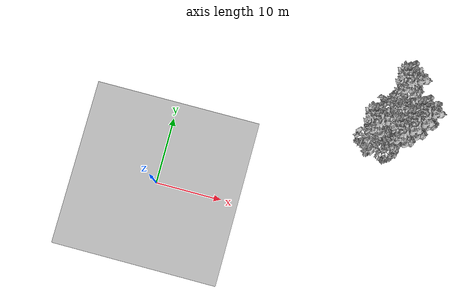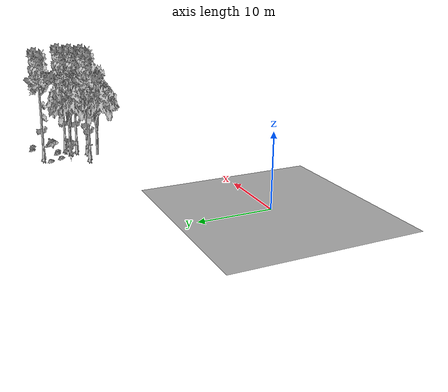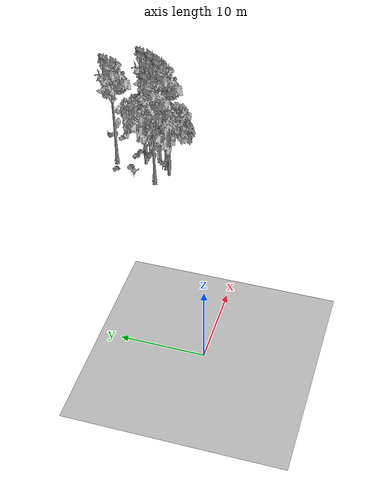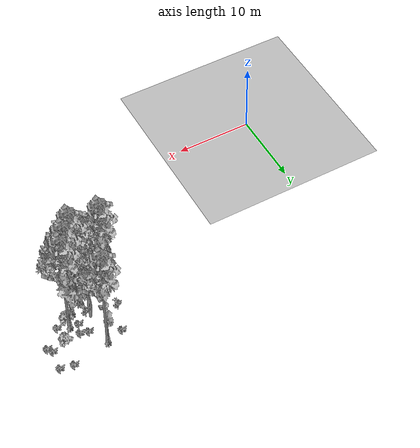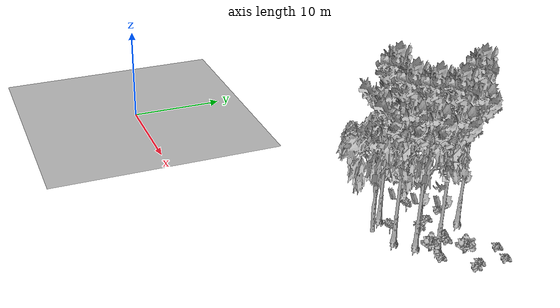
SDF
<sdf version="1.7">
 <world name="default">
  <model name="ground_plane">
   <static>1</static>
   <link name="link">
    <collision name="collision">
     <pose>-50 0 0 0 -0 0</pose>
     <geometry><plane><normal>0 0 1</normal><size>80 80</size></plane></geometry>
     <surface><contact><ode><min_depth>0.01</min_depth><max_vel>0</max_vel></ode></contact></surface>
    </collision>
    <visual name="grass">
     <cast_shadows>0</cast_shadows>
     <geometry>
      <mesh>
       <scale>0.46714285714285714 0.46714285714285714 0.1</scale>
       <uri>file://grass_plane/meshes/grass_plane.dae</uri>
      </mesh>
     </geometry>
    </visual>
   </link>
  </model>
  <model name="Tree 46">
   <static>1</static>
   <pose>31.62524879990042 21.984881812103055 0 1.57079 -0 0</pose>
   <link name="link">
    <collision name="collision">
     <geometry><mesh><scale>3.5 5 3.5</scale><uri>model://tree_9/meshes/tree_9.obj</uri></mesh></geometry>
    </collision>
    <visual name="visual">
     <geometry><mesh><scale>3.5 5 3.5</scale><uri>model://tree_9/meshes/tree_9.obj</uri></mesh></geometry>
    </visual>
   </link>
  </model>
  <model name="Tree 142">
   <static>1</static>
   <pose>34.62983490762261 17.927774769257653 0 1.57079 -0 0</pose>
   <link name="link">
    <collision name="collision">
     <geometry><mesh><scale>3.5 5 3.5</scale><uri>model://tree_9/meshes/tree_9.obj</uri></mesh></geometry>
    </collision>
    <visual name="visual">
     <geometry><mesh><scale>3.5 5 3.5</scale><uri>model://tree_9/meshes/tree_9.obj</uri></mesh></geometry>
    </visual>
   </link>
  </model>
  <model name="Tree 224">
   <static>1</static>
   <pose>33.58056173305613 16.302713274284592 0 1.57079 -0 0</pose>
   <link name="link">
    <collision name="collision">
     <geometry><mesh><scale>3.5 5 3.5</scale><uri>model://tree_9/meshes/tree_9.obj</uri></mesh></geometry>
    </collision>
    <visual name="visual">
     <geometry><mesh><scale>3.5 5 3.5</scale><uri>model://tree_9/meshes/tree_9.obj</uri></mesh></geometry>
    </visual>
   </link>
  </model>
  <model name="Tree 442">
   <static>1</static>
   <pose>30.165659111508162 13.806626503902763 0 1.57079 -0 0</pose>
   <link name="link">
    <collision name="collision">
     <geometry><mesh><scale>3.5 5 3.5</scale><uri>model://tree_2/meshes/tree_2.obj</uri></mesh></geometry>
    </collision>
    <visual name="visual">
     <geometry><mesh><scale>3.5 5 3.5</scale><uri>model://tree_2/meshes/tree_2.obj</uri></mesh></geometry>
    </visual>
   </link>
  </model>
  <model name="Tree 509">
   <static>1</static>
   <pose>28.69350611103812 15.415371504336434 0 1.57079 -0 0</pose>
   <link name="link">
    <collision name="collision">
     <geometry><mesh><scale>3.5 5 3.5</scale><uri>model://tree_9/meshes/tree_9.obj</uri></mesh></geometry>
    </collision>
    <visual name="visual">
     <geometry><mesh><scale>3.5 5 3.5</scale><uri>model://tree_9/meshes/tree_9.obj</uri></mesh></geometry>
    </visual>
   </link>
  </model>
  <model name="Tree 540">
   <static>1</static>
   <pose>31.71832301681937 17.714761710978152 0 1.57079 -0 0</pose>
   <link name="link">
    <collision name="collision">
     <geometry><mesh><scale>3.5 5 3.5</scale><uri>model://tree_2/meshes/tree_2.obj</uri></mesh></geometry>
    </collision>
    <visual name="visual">
     <geometry><mesh><scale>3.5 5 3.5</scale><uri>model://tree_2/meshes/tree_2.obj</uri></mesh></geometry>
    </visual>
   </link>
  </model>
  <model name="Tree 576">
   <static>1</static>
   <pose>32.23447571567333 14.89614206844297 0 1.57079 -0 0</pose>
   <link name="link">
    <collision name="collision">
     <geometry><mesh><scale>3.5 5 3.5</scale><uri>model://tree_9/meshes/tree_9.obj</uri></mesh></geometry>
    </collision>
    <visual name="visual">
     <geometry><mesh><scale>3.5 5 3.5</scale><uri>model://tree_9/meshes/tree_9.obj</uri></mesh></geometry>
    </visual>
   </link>
  </model>
  <model name="Bush 27">
   <static>1</static>
   <pose>30.363307229218435 19.4705896950167 0 1.57079 -0 0</pose>
   <link name="link">
    <collision name="collision">
     <geometry><mesh><scale>2 2 2</scale><uri>model://bush_2/meshes/bush_2.obj</uri></mesh></geometry>
     <surface><contact><collide_without_contact>false</collide_without_contact></contact></surface>
    </collision>
    <visual name="visual">
     <geometry><mesh><scale>2 2 2</scale><uri>model://bush_2/meshes/bush_2.obj</uri></mesh></geometry>
    </visual>
   </link>
  </model>
  <model name="Bush 55">
   <static>1</static>
   <pose>32.892954228932965 19.567156535344964 0 1.57079 -0 0</pose>
   <link name="link">
    <collision name="collision">
     <geometry><mesh><scale>2 2 2</scale><uri>model://bush_2/meshes/bush_2.obj</uri></mesh></geometry>
     <surface><contact><collide_without_contact>false</collide_without_contact></contact></surface>
    </collision>
    <visual name="visual">
     <geometry><mesh><scale>2 2 2</scale><uri>model://bush_2/meshes/bush_2.obj</uri></mesh></geometry>
    </visual>
   </link>
  </model>
  <model name="Bush 74">
   <static>1</static>
   <pose>34.73505094552057 16.946103501059824 0 1.57079 -0 0</pose>
   <link name="link">
    <collision name="collision">
     <geometry><mesh><scale>2 2 2</scale><uri>model://bush_1/meshes/bush_1.obj</uri></mesh></geometry>
     <surface><contact><collide_without_contact>false</collide_without_contact></contact></surface>
    </collision>
    <visual name="visual">
     <geometry><mesh><scale>2 2 2</scale><uri>model://bush_1/meshes/bush_1.obj</uri></mesh></geometry>
    </visual>
   </link>
  </model>
  <model name="Bush 122">
   <static>1</static>
   <pose>31.15694010065411 15.10450554919484 0 1.57079 -0 0</pose>
   <link name="link">
    <collision name="collision">
     <geometry><mesh><scale>2 2 2</scale><uri>model://bush_5/meshes/bush_5.obj</uri></mesh></geometry>
     <surface><contact><collide_without_contact>false</collide_without_contact></contact></surface>
    </collision>
    <visual name="visual">
     <geometry><mesh><scale>2 2 2</scale><uri>model://bush_5/meshes/bush_5.obj</uri></mesh></geometry>
    </visual>
   </link>
  </model>
  <model name="Bush 124">
   <static>1</static>
   <pose>32.33673031396158 17.52706712649364 0 1.57079 -0 0</pose>
   <link name="link">
    <collision name="collision">
     <geometry><mesh><scale>2 2 2</scale><uri>model://bush_5/meshes/bush_5.obj</uri></mesh></geometry>
     <surface><contact><collide_without_contact>false</collide_without_contact></contact></surface>
    </collision>
    <visual name="visual">
     <geometry><mesh><scale>2 2 2</scale><uri>model://bush_5/meshes/bush_5.obj</uri></mesh></geometry>
    </visual>
   </link>
  </model>
  <model name="Bush 227">
   <static>1</static>
   <pose>28.55226359502157 18.422246862859204 0 1.57079 -0 0</pose>
   <link name="link">
    <collision name="collision">
     <geometry><mesh><scale>2 2 2</scale><uri>model://bush_5/meshes/bush_5.obj</uri></mesh></geometry>
     <surface><contact><collide_without_contact>false</collide_without_contact></contact></surface>
    </collision>
    <visual name="visual">
     <geometry><mesh><scale>2 2 2</scale><uri>model://bush_5/meshes/bush_5.obj</uri></mesh></geometry>
    </visual>
   </link>
  </model>
  <model name="Bush 271">
   <static>1</static>
   <pose>38.20371142679436 19.421751029322095 0 1.57079 -0 0</pose>
   <link name="link">
    <collision name="collision">
     <geometry><mesh><scale>2 2 2</scale><uri>model://bush_2/meshes/bush_2.obj</uri></mesh></geometry>
     <surface><contact><collide_without_contact>false</collide_without_contact></contact></surface>
    </collision>
    <visual name="visual">
     <geometry><mesh><scale>2 2 2</scale><uri>model://bush_2/meshes/bush_2.obj</uri></mesh></geometry>
    </visual>
   </link>
  </model>
  <model name="Bush 297">
   <static>1</static>
   <pose>35.98568337728406 17.344098461123174 0 1.57079 -0 0</pose>
   <link name="link">
    <collision name="collision">
     <geometry><mesh><scale>2 2 2</scale><uri>model://bush_2/meshes/bush_2.obj</uri></mesh></geometry>
     <surface><contact><collide_without_contact>false</collide_without_contact></contact></surface>
    </collision>
    <visual name="visual">
     <geometry><mesh><scale>2 2 2</scale><uri>model://bush_2/meshes/bush_2.obj</uri></mesh></geometry>
    </visual>
   </link>
  </model>
  <model name="Bush 345">
   <static>1</static>
   <pose>37.76721023130172 20.05227597589481 0 1.57079 -0 0</pose>
   <link name="link">
    <collision name="collision">
     <geometry><mesh><scale>2 2 2</scale><uri>model://bush_2/meshes/bush_2.obj</uri></mesh></geometry>
     <surface><contact><collide_without_contact>false</collide_without_contact></contact></surface>
    </collision>
    <visual name="visual">
     <geometry><mesh><scale>2 2 2</scale><uri>model://bush_2/meshes/bush_2.obj</uri></mesh></geometry>
    </visual>
   </link>
  </model>
  <model name="Bush 438">
   <static>1</static>
   <pose>36.05100583652295 19.613330116984635 0 1.57079 -0 0</pose>
   <link name="link">
    <collision name="collision">
     <geometry><mesh><scale>2 2 2</scale><uri>model://bush_1/meshes/bush_1.obj</uri></mesh></geometry>
     <surface><contact><collide_without_contact>false</collide_without_contact></contact></surface>
    </collision>
    <visual name="visual">
     <geometry><mesh><scale>2 2 2</scale><uri>model://bush_1/meshes/bush_1.obj</uri></mesh></geometry>
    </visual>
   </link>
  </model>
  <model name="Bush 460">
   <static>1</static>
   <pose>36.35901311340446 22.885182131201674 0 1.57079 -0 0</pose>
   <link name="link">
    <collision name="collision">
     <geometry><mesh><scale>2 2 2</scale><uri>model://bush_2/meshes/bush_2.obj</uri></mesh></geometry>
     <surface><contact><collide_without_contact>false</collide_without_contact></contact></surface>
    </collision>
    <visual name="visual">
     <geometry><mesh><scale>2 2 2</scale><uri>model://bush_2/meshes/bush_2.obj</uri></mesh></geometry>
    </visual>
   </link>
  </model>
  <model name="Bush 541">
   <static>1</static>
   <pose>33.49579454408479 18.002137700051655 0 1.57079 -0 0</pose>
   <link name="link">
    <collision name="collision">
     <geometry><mesh><scale>2 2 2</scale><uri>model://bush_2/meshes/bush_2.obj</uri></mesh></geometry>
     <surface><contact><collide_without_contact>false</collide_without_contact></contact></surface>
    </collision>
    <visual name="visual">
     <geometry><mesh><scale>2 2 2</scale><uri>model://bush_2/meshes/bush_2.obj</uri></mesh></geometry>
    </visual>
   </link>
  </model>
  <model name="Bush 547">
   <static>1</static>
   <pose>29.414392025794925 21.279011884062243 0 1.57079 -0 0</pose>
   <link name="link">
    <collision name="collision">
     <geometry><mesh><scale>2 2 2</scale><uri>model://bush_2/meshes/bush_2.obj</uri></mesh></geometry>
     <surface><contact><collide_without_contact>false</collide_without_contact></contact></surface>
    </collision>
    <visual name="visual">
     <geometry><mesh><scale>2 2 2</scale><uri>model://bush_2/meshes/bush_2.obj</uri></mesh></geometry>
    </visual>
   </link>
  </model>
  <model name="Bush 576">
   <static>1</static>
   <pose>38.028814976208096 22.551628812307783 0 1.57079 -0 0</pose>
   <link name="link">
    <collision name="collision">
     <geometry><mesh><scale>2 2 2</scale><uri>model://bush_2/meshes/bush_2.obj</uri></mesh></geometry>
     <surface><contact><collide_without_contact>false</collide_without_contact></contact></surface>
    </collision>
    <visual name="visual">
     <geometry><mesh><scale>2 2 2</scale><uri>model://bush_2/meshes/bush_2.obj</uri></mesh></geometry>
    </visual>
   </link>
  </model>
  <model name="Bush 600">
   <static>1</static>
   <pose>33.91829665288323 19.279840509086128 0 1.57079 -0 0</pose>
   <link name="link">
    <collision name="collision">
     <geometry><mesh><scale>2 2 2</scale><uri>model://bush_2/meshes/bush_2.obj</uri></mesh></geometry>
     <surface><contact><collide_without_contact>false</collide_without_contact></contact></surface>
    </collision>
    <visual name="visual">
     <geometry><mesh><scale>2 2 2</scale><uri>model://bush_2/meshes/bush_2.obj</uri></mesh></geometry>
    </visual>
   </link>
  </model>
 </world>
</sdf>
